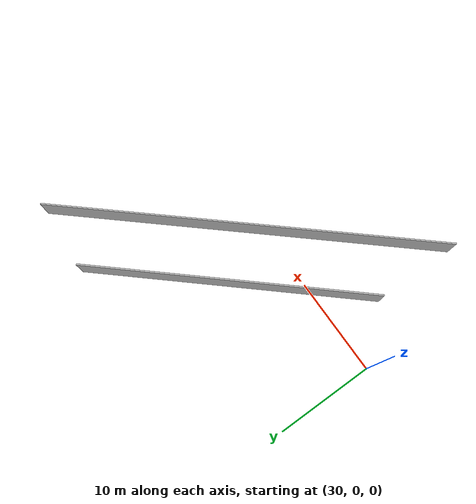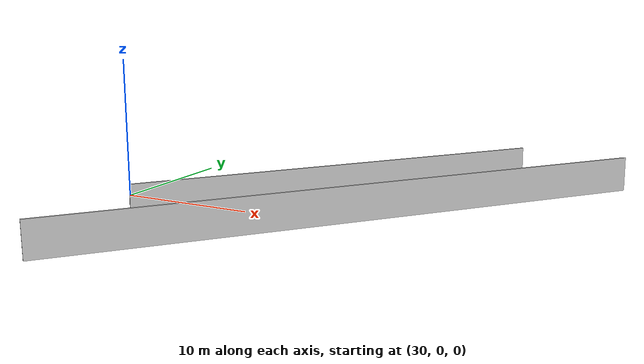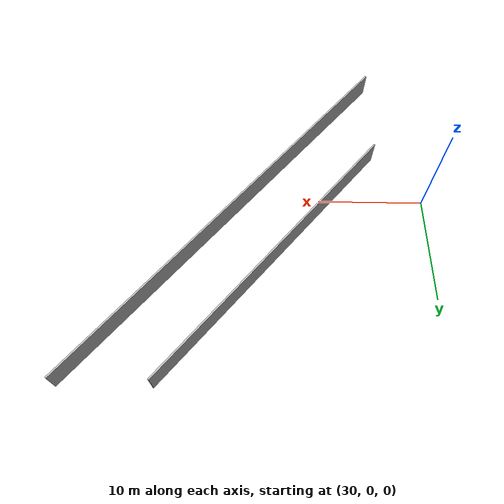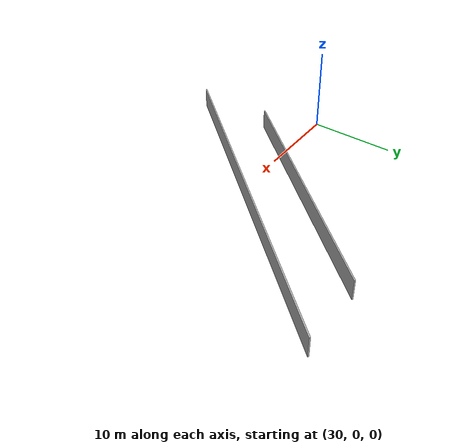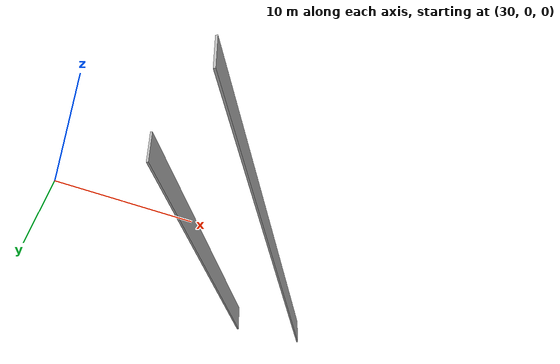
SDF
<?xml version="1.0" ?>
<sdf version="1.6">
  <model name="sps_0739">
    <pose frame="">0 0 0 0 -0 0</pose>
    <static>1</static>
    <self_collide>0</self_collide>
    <allow_auto_disable>0</allow_auto_disable>
    <link name="Wall35">
      <kinematic>0</kinematic>
      <gravity>1</gravity>
      <self_collide>0</self_collide>
      <collision name="collision">
        <geometry>
          <box>
            <size>30.2683 0.15 2.5</size>
          </box>
        </geometry>
        <pose frame="">0 0 0 0 -0 0</pose>
      </collision>
      <visual name="visual">
        <geometry>
          <box>
            <size>30.2683 0.15 2.5</size>
          </box>
        </geometry>
        <pose frame="">0 0 0 0 -0 0</pose>
        <cast_shadows>1</cast_shadows>
        <transparency>0.0</transparency>
      </visual>
      <pose frame="">44.2533 6.34678 1.25 0 0 -2.27376</pose>
    </link>
    <link name="Wall40">
      <kinematic>0</kinematic>
      <gravity>1</gravity>
      <self_collide>0</self_collide>
      <collision name="collision">
        <geometry>
          <box>
            <size>42.465 0.15 2.5</size>
          </box>
        </geometry>
        <pose frame="">0 0 0 0 -0 0</pose>
      </collision>
      <visual name="visual">
        <geometry>
          <box>
            <size>42.465 0.15 2.5</size>
          </box>
        </geometry>
        <pose frame="">0 0 0 0 -0 0</pose>
        <cast_shadows>1</cast_shadows>
        <transparency>0.0</transparency>
      </visual>
      <pose frame="">48.1909 1.68994 1.25 0 -0 0.868142</pose>
    </link>
  </model>
</sdf>
